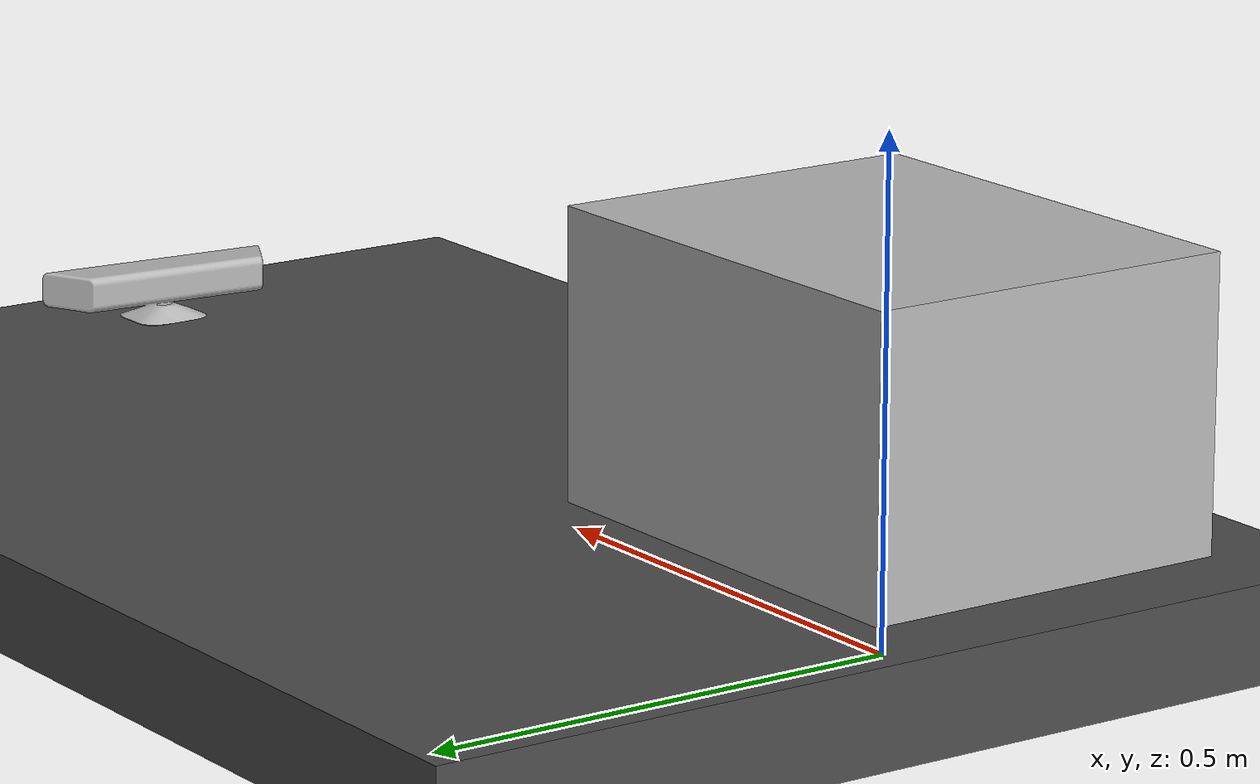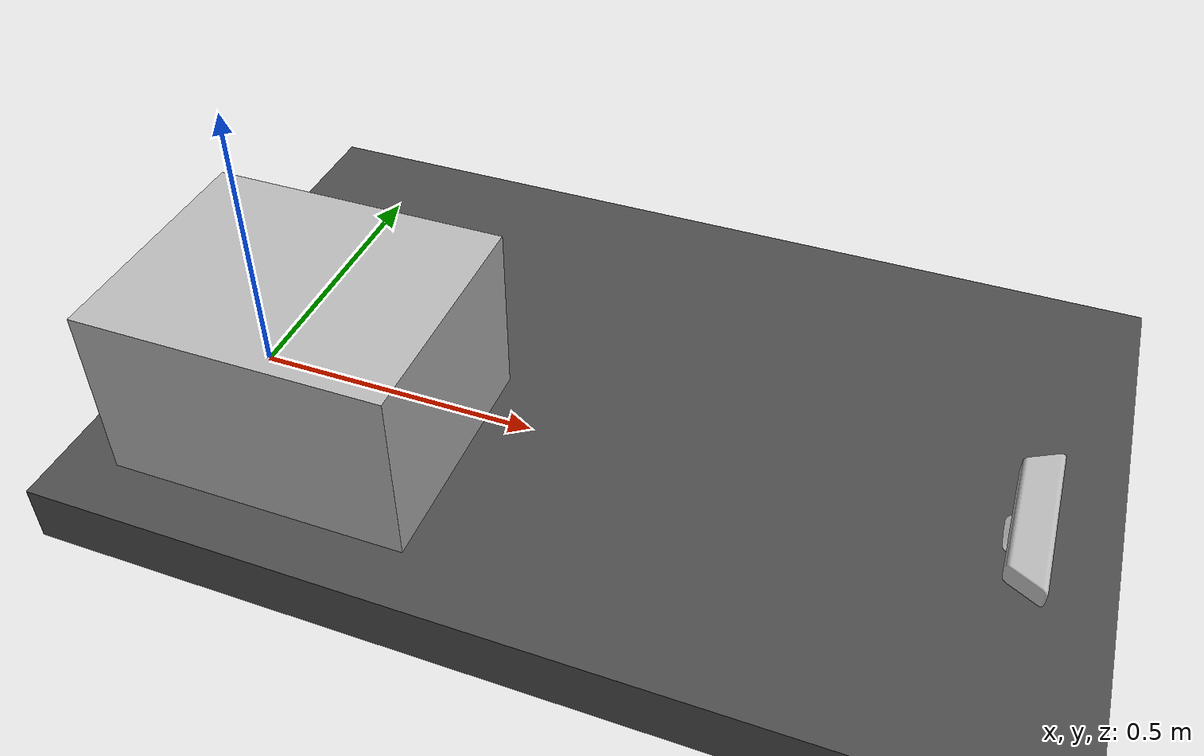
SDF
<sdf version="1.6">
 <world name="default">
  <light name="sun" type="directional">
   <pose>0 0 10 0 -0 0</pose>
   <diffuse>0.8 0.8 0.8 1</diffuse>
   <specular>0.2 0.2 0.2 1</specular>
   <attenuation>
    <range>1000</range>
    <constant>0.9</constant>
    <linear>0.01</linear>
    <quadratic>0.001</quadratic>
   </attenuation>
   <direction>-0.5 0.1 -0.9</direction>
  </light>
  <model name="ground_plane">
   <static>1</static>
   <link name="link">
    <collision name="collision">
     <geometry><plane><normal>0 0 1</normal><size>100 100</size></plane></geometry>
     <surface><friction><ode><mu>100</mu><mu2>50</mu2></ode></friction></surface>
    </collision>
    <visual name="visual">
     <cast_shadows>0</cast_shadows>
     <geometry><plane><normal>0 0 1</normal><size>100 100</size></plane></geometry>
     <material>
      <script><uri>file://media/materials/scripts/gazebo.material</uri><name>Gazebo/Grey</name></script>
     </material>
    </visual>
   </link>
  </model>
  <gravity>0 0 -9.8</gravity>
  <magnetic_field>6e-06 2.3e-05 -4.2e-05</magnetic_field>
  <atmosphere type="adiabatic"/>
  <physics name="default_physics" default="0" type="ode">
   <max_step_size>0.001</max_step_size>
   <real_time_factor>1</real_time_factor>
   <real_time_update_rate>1000</real_time_update_rate>
  </physics>
  <scene><ambient>0.4 0.4 0.4 1</ambient><background>0.7 0.7 0.7 1</background><shadows>1</shadows></scene>
  <spherical_coordinates>
   <surface_model>EARTH_WGS84</surface_model>
   <latitude_deg>0</latitude_deg>
   <longitude_deg>0</longitude_deg>
   <elevation>0</elevation>
   <heading_deg>0</heading_deg>
  </spherical_coordinates>
  <model name="cardboard_box">
   <pose>0.192913 -0.149525 0.199 0 -0 0</pose>
   <link name="link">
    <inertial>
     <mass>2</mass>
     <inertia>
      <ixx>0.0416667</ixx>
      <ixy>0</ixy>
      <ixz>0</ixz>
      <iyy>0.0566667</iyy>
      <iyz>0</iyz>
      <izz>0.0683333</izz>
     </inertia>
    </inertial>
    <collision name="collision">
     <geometry><box><size>0.5 0.4 0.3</size></box></geometry>
     <surface>
      <friction><ode><mu>1</mu><mu2>1</mu2></ode></friction>
      <contact><ode><kp>1e+07</kp><kd>1</kd><min_depth>0.001</min_depth><max_vel>0.1</max_vel></ode></contact>
     </surface>
    </collision>
    <visual name="visual">
     <pose>0 0 -0.15 0 -0 0</pose>
     <geometry>
      <mesh><uri>model://cardboard_box/meshes/cardboard_box.dae</uri><scale>1.25932 1.00745 0.755591</scale></mesh>
     </geometry>
    </visual>
   </link>
  </model>
  <model name="kinect_ros">
   <pose>1.33112 0.00036 0.089585 0.024928 0.004312 0.004492</pose>
   <link name="kinect_ros::link">
    <inertial>
     <mass>0.1</mass>
     <inertia><ixx>1</ixx><ixy>0</ixy><ixz>0</ixz><iyy>1</iyy><iyz>0</iyz><izz>1</izz></inertia>
    </inertial>
    <collision name="collision"><geometry><box><size>0.073 0.276 0.072</size></box></geometry></collision>
    <visual name="visual"><geometry><mesh><uri>model://kinect/meshes/kinect.dae</uri></mesh></geometry></visual>
    <sensor name="camera" type="depth">
     <update_rate>20</update_rate>
     <camera name="__default__">
      <horizontal_fov>1.0472</horizontal_fov>
      <image><width>640</width><height>480</height><format>R8G8B8</format></image>
      <clip><near>0.05</near><far>3</far></clip>
     </camera>
     <plugin name="camera_plugin" filename="libgazebo_ros_openni_kinect.so">
      <baseline>0.2</baseline>
      <alwaysOn>1</alwaysOn>
      <updateRate>0.0</updateRate>
      <cameraName>camera_ir</cameraName>
      <imageTopicName>/camera/color/image_raw</imageTopicName>
      <cameraInfoTopicName>/camera/color/camera_info</cameraInfoTopicName>
      <depthImageTopicName>/camera/depth/image_raw</depthImageTopicName>
      <depthImageCameraInfoTopicName>/camera/depth/camera_info</depthImageCameraInfoTopicName>
      <pointCloudTopicName>/camera/depth/points</pointCloudTopicName>
      <frameName>camera_link</frameName>
      <pointCloudCutoff>0.5</pointCloudCutoff>
      <pointCloudCutoffMax>3.0</pointCloudCutoffMax>
      <distortionK1>0</distortionK1>
      <distortionK2>0</distortionK2>
      <distortionK3>0</distortionK3>
      <distortionT1>0</distortionT1>
      <distortionT2>0</distortionT2>
      <CxPrime>0</CxPrime>
      <Cx>0</Cx>
      <Cy>0</Cy>
      <focalLength>0</focalLength>
      <hackBaseline>0</hackBaseline>
     </plugin>
    </sensor>
   </link>
  </model>
  <model name="asphalt_plane">
   <static>1</static>
   <link name="link">
    <collision name="collision"><geometry><box><size>20 20 0.1</size></box></geometry></collision>
    <visual name="visual">
     <cast_shadows>0</cast_shadows>
     <geometry><box><size>20 20 0.1</size></box></geometry>
     <material>
      <script>
       <uri>model://asphalt_plane/materials/scripts</uri>
       <uri>model://asphalt_plane/materials/textures</uri>
       <name>vrc/asphalt</name>
      </script>
     </material>
    </visual>
   </link>
   <pose>1.70909 0.179764 0 0 -0 0</pose>
  </model>
 </world>
</sdf>
